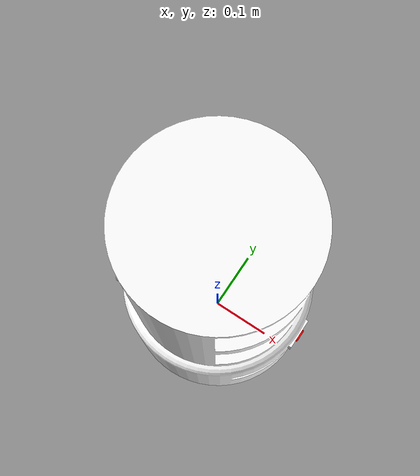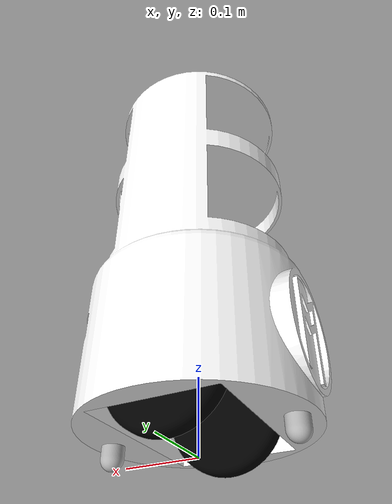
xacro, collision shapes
<?xml version="1.0" ?>
<robot name="circular_waiter_robot" xmlns:xacro="http://www.ros.org/wiki/xacro">

<!-- Realsense Camera Primary and Secondary -->
<xacro:arg name="realsense_enabled"             default="$(optenv HUSKY_REALSENSE_ENABLED 1)" />
<xacro:arg name="realsense_topic"               default="$(optenv HUSKY_REALSENSE_TOPIC realsense)" />
<xacro:arg name="realsense_prefix"              default="$(optenv HUSKY_REALSENSE_PREFIX camera)" />
<xacro:arg name="realsense_parent"              default="$(optenv HUSKY_REALSENSE_PARENT base_link)" />
<xacro:arg name="realsense_xyz"                 default="$(optenv HUSKY_REALSENSE_XYZ .14 0 .565)" />
<xacro:arg name="realsense_rpy"                 default="$(optenv HUSKY_REALSENSE_RPY 0 0.3 0)" />

<xacro:arg name="realsense_secondary_enabled"   default="$(optenv HUSKY_REALSENSE_SECONDARY_ENABLED 0)" />
<xacro:arg name="realsense_secondary_topic"     default="$(optenv HUSKY_REALSENSE_SECONDARY_TOPIC realsense_secondary)" />
<xacro:arg name="realsense_secondary_prefix"    default="$(optenv HUSKY_REALSENSE_SECONDARY_PREFIX camera_secondary)" />
<xacro:arg name="realsense_secondary_parent"    default="$(optenv HUSKY_REALSENSE_SECONDARY_PARENT base_link)" />
<xacro:arg name="realsense_secondary_xyz"       default="$(optenv HUSKY_REALSENSE_SECONDARY_XYZ 0 0 0)" />
<xacro:arg name="realsense_secondary_rpy"       default="$(optenv HUSKY_REALSENSE_SECONDARY_RPY 0 0 0)" />

<xacro:include filename="$(find circular_waiter_robot_description)/urdf/materials.xacro" />
<xacro:include filename="$(find circular_waiter_robot_description)/urdf/circular_waiter_robot.trans" />
<xacro:include filename="$(find circular_waiter_robot_description)/urdf/circular_waiter_robot.gazebo" />
<xacro:include filename="$(find circular_waiter_robot_description)/urdf/intel_realsense.urdf.xacro"/>
<link name="base_link">
  <inertial>
    <origin xyz="-0.0053059584965141696 1.616160100893701e-08 0.18069105446173542" rpy="0 0 0"/>
    <mass value="7.585934889059097"/>
    <inertia ixx="0.190339" iyy="0.198897" izz="0.119981" ixy="0.0" iyz="0.0" ixz="-0.001508"/>
  </inertial>
  <visual>
    <origin xyz="0 0 0" rpy="0 0 0"/>
    <geometry>
      <mesh filename="package://circular_waiter_robot_description/meshes/base_link.stl" scale="0.001 0.001 0.001"/>
    </geometry>
    <material name="white"/>
  </visual>
  <collision>
    <origin xyz="0 0 0" rpy="0 0 0"/>
    <geometry>
      <mesh filename="package://circular_waiter_robot_description/meshes/base_link.stl" scale="0.001 0.001 0.001"/>
    </geometry>
  </collision>
</link>

<link name="right_wheel_1">
  <inertial>
    <origin xyz="2.7000355657130202e-17 0.01750048395086569 1.3877787807814457e-17" rpy="0 0 0"/>
    <mass value="0.6265325415633612"/>
    <inertia ixx="0.001024" iyy="0.001927" izz="0.001024" ixy="-0.0" iyz="-0.0" ixz="0.0"/>
  </inertial>
  <visual>
    <origin xyz="-0.0 0.101114 -0.08" rpy="0 0 0"/>
    <geometry>
      <mesh filename="package://circular_waiter_robot_description/meshes/right_wheel_1.stl" scale="0.001 0.001 0.001"/>
    </geometry>
    <material name="black"/>
  </visual>
  <collision>
    <origin xyz="-0.0 0.101114 -0.08" rpy="0 0 0"/>
    <geometry>
      <mesh filename="package://circular_waiter_robot_description/meshes/right_wheel_1.stl" scale="0.001 0.001 0.001"/>
    </geometry>
  </collision>
</link>

<link name="left_wheel_1">
  <inertial>
    <origin xyz="2.7000355657130202e-17 -0.01750048395086569 0.0" rpy="0 0 0"/>
    <mass value="0.6265325415633612"/>
    <inertia ixx="0.001024" iyy="0.001927" izz="0.001024" ixy="-0.0" iyz="0.0" ixz="0.0"/>
  </inertial>
  <visual>
    <origin xyz="-0.0 -0.101114 -0.08" rpy="0 0 0"/>
    <geometry>
      <mesh filename="package://circular_waiter_robot_description/meshes/left_wheel_1.stl" scale="0.001 0.001 0.001"/>
    </geometry>
    <material name="black"/>
  </visual>
  <collision>
    <origin xyz="-0.0 -0.101114 -0.08" rpy="0 0 0"/>
    <geometry>
      <mesh filename="package://circular_waiter_robot_description/meshes/left_wheel_1.stl" scale="0.001 0.001 0.001"/>
    </geometry>
  </collision>
</link>

<link name="camera_1">
  <inertial>
    <origin xyz="0.0013599752116220942 -6.109142609001834e-18 0.0" rpy="0 0 0"/>
    <mass value="0.0006451464615692233"/>
    <inertia ixx="0.0" iyy="0.0" izz="0.0" ixy="-0.0" iyz="0.0" ixz="-0.0"/>
  </inertial>
  <visual>
    <origin xyz="-0.1525 -0.0 -0.2" rpy="0 0 0"/>
    <geometry>
      <mesh filename="package://circular_waiter_robot_description/meshes/camera_1.stl" scale="0.001 0.001 0.001"/>
    </geometry>
    <material name="red"/>
  </visual>
  <collision>
    <origin xyz="-0.1525 -0.0 -0.2" rpy="0 0 0"/>
    <geometry>
      <mesh filename="package://circular_waiter_robot_description/meshes/camera_1.stl" scale="0.001 0.001 0.001"/>
    </geometry>
  </collision>
</link>

<link name="lidar_1">
  <inertial>
    <origin xyz="0.0 2.2189765115406322e-17 0.007499999999999979" rpy="0 0 0"/>
    <mass value="0.021338922545952342"/>
    <inertia ixx="3e-06" iyy="3e-06" izz="5e-06" ixy="0.0" iyz="0.0" ixz="0.0"/>
  </inertial>
  <visual>
    <origin xyz="-0.125 -0.0 -0.14" rpy="0 0 0"/>
    <geometry>
      <mesh filename="package://circular_waiter_robot_description/meshes/lidar_1.stl" scale="0.001 0.001 0.001"/>
    </geometry>
    <material name="black"/>
  </visual>
  <collision>
    <origin xyz="-0.125 -0.0 -0.14" rpy="0 0 0"/>
    <geometry>
      <mesh filename="package://circular_waiter_robot_description/meshes/lidar_1.stl" scale="0.001 0.001 0.001"/>
    </geometry>
  </collision>
</link>

<link name="front_caster_wheel_1">
  <inertial>
    <origin xyz="0.03999999999999973 -1.2022559695755379e-17 -0.012749999999999949" rpy="0 0 0"/>
    <mass value="0.04771293842639495"/>
    <inertia ixx="5e-06" iyy="5e-06" izz="5e-06" ixy="-0.0" iyz="0.0" ixz="0.0"/>
  </inertial>
  <visual>
    <origin xyz="-0.0825 -0.0 -0.03" rpy="0 0 0"/>
    <geometry>
      <mesh filename="package://circular_waiter_robot_description/meshes/front_caster_wheel_1.stl" scale="0.001 0.001 0.001"/>
    </geometry>
    <material name="silver"/>
  </visual>
  <collision>
    <origin xyz="-0.0825 -0.0 -0.03" rpy="0 0 0"/>
    <geometry>
      <mesh filename="package://circular_waiter_robot_description/meshes/front_caster_wheel_1.stl" scale="0.001 0.001 0.001"/>
    </geometry>
  </collision>
</link>

<link name="rear_caster_wheel_1">
  <inertial>
    <origin xyz="-0.03999999999999991 3.579423759522287e-18 -0.012749999999999945" rpy="0 0 0"/>
    <mass value="0.04771293842639496"/>
    <inertia ixx="5e-06" iyy="5e-06" izz="5e-06" ixy="-0.0" iyz="-0.0" ixz="-0.0"/>
  </inertial>
  <visual>
    <origin xyz="0.0825 -0.0 -0.03" rpy="0 0 0"/>
    <geometry>
      <mesh filename="package://circular_waiter_robot_description/meshes/rear_caster_wheel_1.stl" scale="0.001 0.001 0.001"/>
    </geometry>
    <material name="silver"/>
  </visual>
  <collision>
    <origin xyz="0.0825 -0.0 -0.03" rpy="0 0 0"/>
    <geometry>
      <mesh filename="package://circular_waiter_robot_description/meshes/rear_caster_wheel_1.stl" scale="0.001 0.001 0.001"/>
    </geometry>
  </collision>
</link>

<!-- Intel Realsense Primary and Secondary -->
<xacro:if value="$(arg realsense_enabled)">
  <link name="$(arg realsense_prefix)_realsense_mountpoint"/>
  <joint name="$(arg realsense_prefix)_realsense_mountpoint_joint" type="fixed">
    <origin xyz="$(arg realsense_xyz)" rpy="$(arg realsense_rpy)" />
    <parent link="$(arg realsense_parent)"/>
    <child link="$(arg realsense_prefix)_realsense_mountpoint" />
  </joint>
  <xacro:intel_realsense_mount prefix="$(arg realsense_prefix)" topic="$(arg realsense_topic)" parent_link="$(arg realsense_prefix)_realsense_mountpoint"/>
</xacro:if>

<xacro:if value="$(arg realsense_secondary_enabled)">
  <link name="$(arg realsense_secondary_prefix)_realsense_mountpoint"/>
  <joint name="$(arg realsense_secondary_prefix)_realsense_mountpoint_joint" type="fixed">
    <origin xyz="$(arg realsense_secondary_xyz)" rpy="$(arg realsense_secondary_rpy)" />
    <parent link="$(arg realsense_secondary_parent)"/>
    <child link="$(arg realsense_secondary_prefix)_realsense_mountpoint" />
  </joint>
  <xacro:intel_realsense_mount prefix="$(arg realsense_secondary_prefix)" topic="$(arg realsense_secondary_topic)" parent_link="$(arg realsense_secondary_prefix)_realsense_mountpoint"/>
</xacro:if>

<joint name="right_wheel_joint" type="continuous">
  <origin xyz="0.0 -0.101114 0.08" rpy="0 0 0"/>
  <parent link="base_link"/>
  <child link="right_wheel_1"/>
  <axis xyz="0.0 1.0 0.0"/>
</joint>

<joint name="left_wheel_joint" type="continuous">
  <origin xyz="0.0 0.101114 0.08" rpy="0 0 0"/>
  <parent link="base_link"/>
  <child link="left_wheel_1"/>
  <axis xyz="0.0 1.0 0.0"/>
</joint>

<joint name="camera" type="fixed">
  <origin xyz="0.1525 0.0 0.2" rpy="0 0 0"/>
  <parent link="base_link"/>
  <child link="camera_1"/>
</joint>

<joint name="lidar" type="fixed">
  <origin xyz="0.125 0.0 0.14" rpy="0 0 0"/>
  <parent link="base_link"/>
  <child link="lidar_1"/>
</joint>

<joint name="front_caster_wheel_joint" type="fixed">
  <origin xyz="0.0825 0.0 0.03" rpy="0 0 0"/>
  <parent link="base_link"/>
  <child link="front_caster_wheel_1"/>
</joint>

<joint name="rear_caster_wheel_joint" type="fixed">
  <origin xyz="-0.0825 0.0 0.03" rpy="0 0 0"/>
  <parent link="base_link"/>
  <child link="rear_caster_wheel_1"/>
</joint>

</robot>

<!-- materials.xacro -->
<robot name="circular_waiter_robot" xmlns:xacro="http://www.ros.org/wiki/xacro" >

<material name="silver">
  <color rgba="0.700 0.700 0.700 1.000"/>
</material>

<material name="blue">
  <color rgba="0.000 0.000 1.000 1.000"/>
</material>

<material name="red">
  <color rgba="1.000 0.000 0.000 1.000"/>
</material>

<material name="white">
  <color rgba="1.000 1.000 1.000 1.000"/>
</material>

<material name="black">
  <color rgba="0.000 0.000 0.000 1.000"/>
</material>
</robot>

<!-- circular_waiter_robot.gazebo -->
<robot name="circular_waiter_robot" xmlns:xacro="http://www.ros.org/wiki/xacro" >

<xacro:property name="body_color" value="Gazebo/Silver" />

<gazebo>
  <plugin name="control" filename="libgazebo_ros_control.so"/>
</gazebo>
<gazebo reference="base_link">
  <material>${body_color}</material>
  <mu1>0.2</mu1>
  <mu2>0.2</mu2>
  <selfCollide>true</selfCollide>
  <gravity>true</gravity>
</gazebo>

<gazebo reference="right_wheel_1">
  <material>${body_color}</material>
  <mu1>10</mu1>
  <mu2>10</mu2>
  <selfCollide>true</selfCollide>
</gazebo>

<gazebo reference="left_wheel_1">
  <material>${body_color}</material>
  <mu1>10</mu1>
  <mu2>10</mu2>
  <selfCollide>true</selfCollide>
</gazebo>

<gazebo reference="camera_1">
  <material>${body_color}</material>
  <mu1>0.2</mu1>
  <mu2>0.2</mu2>
  <selfCollide>true</selfCollide>
</gazebo>

<gazebo reference="lidar_1">
  <material>${body_color}</material>
  <mu1>0.2</mu1>
  <mu2>0.2</mu2>
  <selfCollide>true</selfCollide>
</gazebo>

<gazebo reference="front_caster_wheel_1">
  <material>${body_color}</material>
  <mu1>0.2</mu1>
  <mu2>0.2</mu2>
  <selfCollide>true</selfCollide>
</gazebo>

<gazebo reference="rear_caster_wheel_1">
  <material>${body_color}</material>
  <mu1>0.2</mu1>
  <mu2>0.2</mu2>
  <selfCollide>true</selfCollide>
</gazebo>

<gazebo>
  <plugin name="differential_drive_controller" filename="libgazebo_ros_diff_drive.so">

    <!-- Plugin update rate in Hz -->
    <updateRate>40</updateRate>

    <!-- Name of left joint, defaults to `left_joint` -->
    <leftJoint>left_wheel_joint</leftJoint>

    <!-- Name of right joint, defaults to `right_joint` -->
    <rightJoint>right_wheel_joint</rightJoint>

    <!-- The distance from the center of one wheel to the other, in meters, defaults to 0.34 m -->
    <wheelSeparation>0.168</wheelSeparation>

    <!-- Diameter of the wheels, in meters, defaults to 0.15 m -->
    <wheelDiameter>0.16</wheelDiameter>

    <!-- Wheel acceleration, in rad/s^2, defaults to 0.0 rad/s^2 -->
    <wheelAcceleration>1.0</wheelAcceleration>

    <!-- Maximum torque which the wheels can produce, in Nm, defaults to 5 Nm -->
    <wheelTorque>20</wheelTorque>

    <!-- Topic to receive geometry_msgs/Twist message commands, defaults to `cmd_vel` -->
    <commandTopic>cmd_vel</commandTopic>

    <!-- Topic to publish nav_msgs/Odometry messages, defaults to `odom` -->
    <odometryTopic>odom</odometryTopic>

    <!-- Odometry frame, defaults to `odom` -->
    <odometryFrame>odom</odometryFrame>

    <!-- Robot frame to calculate odometry from, defaults to `base_footprint` -->
    <robotBaseFrame>base_link</robotBaseFrame>

    <!-- Odometry source, 0 for ENCODER, 1 for WORLD, defaults to WORLD -->
    <odometrySource>1</odometrySource>

    <!-- Set to true to publish transforms for the wheel links, defaults to false -->
    <publishWheelTF>true</publishWheelTF>

    <!-- Set to true to publish transforms for the odometry, defaults to true -->
    <publishOdom>true</publishOdom>

    <!-- Set to true to publish sensor_msgs/JointState on /joint_states for the wheel joints, defaults to false -->
    <publishWheelJointState>true</publishWheelJointState>

    <!-- Set to true to swap right and left wheels, defaults to true -->
    <legacyMode>false</legacyMode>
  </plugin>
</gazebo>

<gazebo reference="lidar_1">
    <sensor type="ray" name="head_hokuyo_sensor">
      <pose>0 0 0 0 0 0</pose>
      <visualize>true</visualize>
      <update_rate>40</update_rate>
      <ray>
        <scan>
          <horizontal>
            <samples>360</samples>
            <resolution>1</resolution>
            <min_angle>-1.57</min_angle>
            <max_angle>1.57</max_angle>
          </horizontal>
        </scan>
        <range>
          <min>0.10</min>
          <max>30.0</max>
          <resolution>0.01</resolution>
        </range>
        <noise>
          <type>gaussian</type>
          <mean>0.0</mean>
          <stddev>0.01</stddev>
        </noise>
      </ray>
      <plugin name="gazebo_ros_head_hokuyo_controller" filename="libgazebo_ros_laser.so">
        <topicName>/scan</topicName>
        <frameName>lidar_1</frameName>
      </plugin>
    </sensor>
  </gazebo>

  <!-- camera -->
  <gazebo reference="camera_1">
    <sensor type="camera" name="camera1">
      <visualize>true</visualize>
      <update_rate>30.0</update_rate>
      <camera name="head">
        <horizontal_fov>1.3962634</horizontal_fov>
        <image>
          <width>1080</width>
          <height>720</height>
          <format>R8G8B8</format>
        </image>
        <clip>
          <near>0.02</near>
          <far>300</far>
        </clip>
        <noise>
          <type>gaussian</type>
          <!-- Noise is sampled independently per pixel on each frame.
               That pixel's noise value is added to each of its color
               channels, which at that point lie in the range [0,1]. -->
          <mean>0.0</mean>
          <stddev>0.007</stddev>
        </noise>
      </camera>
      <plugin name="camera_controller" filename="libgazebo_ros_camera.so">
        <alwaysOn>true</alwaysOn>
        <updateRate>0.0</updateRate>
        <cameraName>/camera1</cameraName>
        <imageTopicName>image_raw</imageTopicName>
        <cameraInfoTopicName>camera_info</cameraInfoTopicName>
        <frameName>camera_1</frameName>
        <hackBaseline>0.07</hackBaseline>
        <distortionK1>0.0</distortionK1>
        <distortionK2>0.0</distortionK2>
        <distortionK3>0.0</distortionK3>
        <distortionT1>0.0</distortionT1>
        <distortionT2>0.0</distortionT2>
      </plugin>
    </sensor>
  </gazebo>

</robot>

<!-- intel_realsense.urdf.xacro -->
<robot xmlns:xacro="http://ros.org/wiki/xacro">
  <xacro:macro name="intel_realsense_mount" params="prefix topic parent_link">

    <xacro:macro name="intel_realsense" params="
               frame:=realsense          topic:=realsense
               h_fov:=1.5184351666666667 v_fov:=1.0122901111111111
               min_range:=0.105          max_range:=8.0
               width:=640                height:=480
               update_rate:=30
               robot_namespace:=/">

      <!-- this link is the origin for the camera's data -->
      <link name="${frame}" />

      <link name="${frame}_gazebo" />
      <joint name="${frame}_gazebo_joint" type="fixed">
        <parent link="${frame}"/>
        <child link="${frame}_gazebo"/>
        <origin xyz="0.0 0 0" rpy="-1.5707963267948966 0 -1.5707963267948966"/>
      </joint>

      <gazebo reference="${frame}">
        <turnGravityOff>false</turnGravityOff>
        <sensor type="depth" name="${prefix}_realsense_depth">
          <update_rate>${update_rate}</update_rate>
          <camera>
            <!-- 75x65 degree FOV for the depth sensor -->
            <horizontal_fov>${h_fov}</horizontal_fov>
            <vertical_fov>${v_fov}</vertical_fov>

            <image>
              <width>${width}</width>
              <height>${height}</height>
              <!-- TODO: check what format the Realsense hardware delivers and set this to match! -->
              <format>RGB_INT8</format>
            </image>
            <clip>
              <!-- give the color sensor a maximum range of 50m so that the simulation renders nicely -->
              <near>0.01</near>
              <far>50.0</far>
            </clip>
          </camera>
          <plugin name="kinect_controller" filename="libgazebo_ros_openni_kinect.so">
            <baseline>0.2</baseline>
            <alwaysOn>true</alwaysOn>
            <updateRate>${update_rate}</updateRate>
            <cameraName>${topic}</cameraName>
            <imageTopicName>color/image_raw</imageTopicName>
            <cameraInfoTopicName>color/camera_info</cameraInfoTopicName>
            <depthImageTopicName>depth/image_rect_raw</depthImageTopicName>
            <depthImageInfoTopicName>depth/camera_info</depthImageInfoTopicName>
            <pointCloudTopicName>depth/color/points</pointCloudTopicName>
            <frameName>${frame}_gazebo</frameName>
            <pointCloudCutoff>${min_range}</pointCloudCutoff>
            <pointCloudCutoffMax>${max_range}</pointCloudCutoffMax>
            <distortionK1>0.00000001</distortionK1>
            <distortionK2>0.00000001</distortionK2>
            <distortionK3>0.00000001</distortionK3>
            <distortionT1>0.00000001</distortionT1>
            <distortionT2>0.00000001</distortionT2>
            <CxPrime>0</CxPrime>
            <Cx>0</Cx>
            <Cy>0</Cy>
            <focalLength>0</focalLength>
            <hackBaseline>0</hackBaseline>
          </plugin>
        </sensor>
      </gazebo>
    </xacro:macro>

    <link name="${prefix}_realsense_lens">
      <visual>
        <!--
          the model's origin is in the middle & it's rotated to lie in
          the optical standard with X left, Y up, and Z forward
        -->
        <origin xyz="0.0115 0 0.0100" rpy="1.570796 0 1.570796" />
        <geometry>
          <!-- Origin of this mesh is the base of the bracket. -->
          <mesh filename="package://realsense2_description/meshes/d415.stl" />
        </geometry>
        <material name="white" />
      </visual>
    </link>

    <joint type="fixed" name="${prefix}_realsense_lens_joint">
      <origin xyz="0 0 0" rpy="0 0 0" />
      <parent link="${parent_link}" />
      <child link="${prefix}_realsense_lens" />
    </joint>
    <joint type="fixed" name="${prefix}_realsense_joint">
      <origin xyz="0.025 0 0" rpy="0 0 0" />
      <parent link="${prefix}_realsense_lens" />
      <child link="${prefix}_realsense" />
    </joint>

    <xacro:intel_realsense frame="${prefix}_realsense" topic="${topic}"/>
  </xacro:macro>
</robot>
